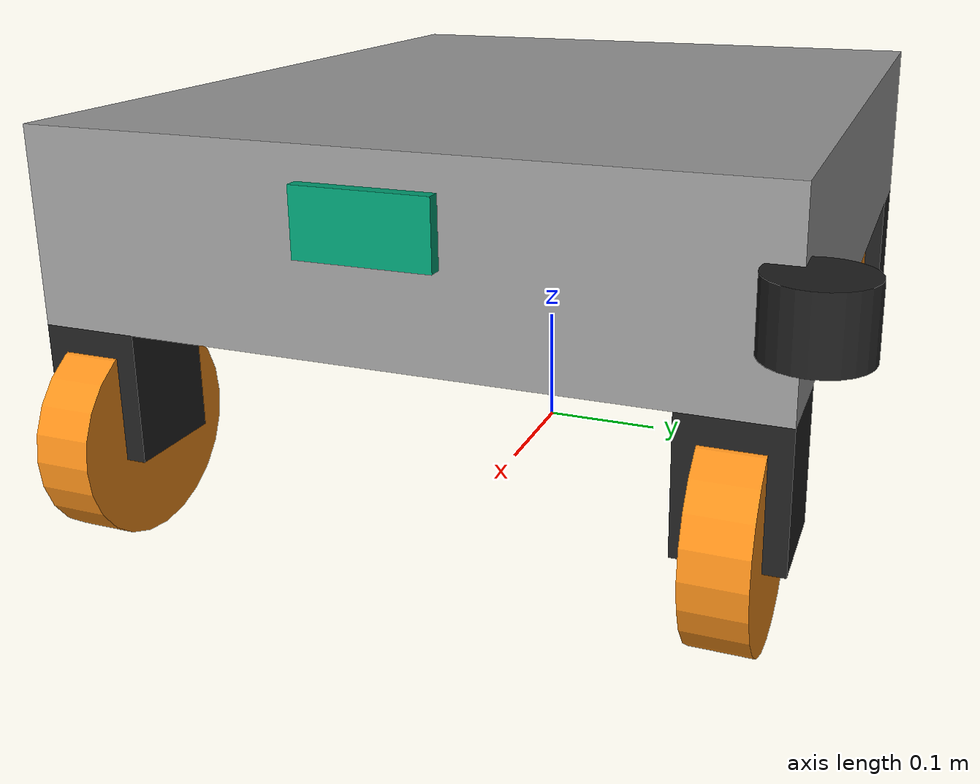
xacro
<?xml version="1.0"?>
<robot name="swerve_robot" xmlns:xacro="http://www.ros.org/wiki/xacro">

    <xacro:include filename="common_properties.xacro" />
    <xacro:include filename="mobile_base.xacro" />
    <xacro:include filename="swerve_robot_ros2_control.xacro" />
    <xacro:include filename="mobile_base_gazebo.xacro" />
    <xacro:include filename="camera.xacro" />
    <xacro:include filename="lidar.xacro" />
    <xacro:include filename="imu.xacro" />

</robot>

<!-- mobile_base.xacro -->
<robot name="swerve_robot" xmlns:xacro="http://www.ros.org/wiki/xacro">

    <xacro:property name="base_length" value="0.679" />
    <xacro:property name="base_width" value="0.550" />
    <xacro:property name="base_height" value="0.15" />
    <xacro:property name="wheel_radius" value="0.08" />
    <xacro:property name="wheel_length" value="0.044" />
    <xacro:property name="caster_length" value="0.075" />
    <xacro:property name="caster_width" value="0.075" />
    <xacro:property name="caster_height" value="0.1" />

    <link name="base_footprint" />

    <link name="base_link">
        <visual>
            <geometry>
                 <box size="${base_length} ${base_width} ${base_height}"/>
            </geometry>
            <origin xyz="0 0 0" rpy="0 0 0" />
            <material name="grey" />
        </visual>
        <collision>
            <geometry>
                <box size="${base_length} ${base_width} ${base_height}"/>
            </geometry>
            <origin xyz="0 0 0" rpy="0 0 0" />
        </collision>
        <xacro:box_inertia m="20.0" x="${base_length}" y="${base_width}" z="${base_height}"
                           o_xyz="0 0 ${base_height}" o_rpy="0 0 0" />
    </link>

    <xacro:macro name="caster_link" params="prefix">
        <link name="${prefix}_caster_link">
            <visual>
                <geometry>
                    <box size="${caster_length} ${caster_width} ${caster_height}"/>
                </geometry>
                <origin xyz="0 0 0" rpy="0 0 0" />
                <material name="black" />
            </visual>
            <collision>
                <geometry>
                    <box size="${caster_length} ${caster_width} ${caster_height}"/>
                </geometry>
                <origin xyz="0 0 0" rpy="0 0 0" />
            </collision>
            <xacro:box_inertia m="10.0" x="${caster_length}" y="${caster_width}" z="${caster_height}"
                            o_xyz="0 0 ${caster_height}" o_rpy="0 0 0" />
        </link>
    </xacro:macro>

    <xacro:caster_link prefix="front_right" />
    <xacro:caster_link prefix="front_left" />
    <xacro:caster_link prefix="back_right" />
    <xacro:caster_link prefix="back_left" />

    <xacro:macro name="wheel_link" params="prefix">
        <link name="${prefix}_wheel_link">
            <visual>
                <geometry>
                    <cylinder radius="${wheel_radius}" length="${wheel_length}" />
                </geometry>
                <origin xyz="0 0 0" rpy="${pi / 2.0} 0 0" />
                <material name="orange" />
            </visual>
            <collision>
                <geometry>
                    <cylinder radius="${wheel_radius}" length="${wheel_length}" />
                </geometry>
                <origin xyz="0 0 0" rpy="${pi / 2.0} 0 0" />
            </collision>
            <xacro:cylinder_inertia m="10.0" r="${wheel_radius}" l="${wheel_length}"
                                    o_xyz="0 0 0" o_rpy="${pi / 2.0} 0 0" />
        </link>
    </xacro:macro>

    <xacro:wheel_link prefix="front_right" />
    <xacro:wheel_link prefix="front_left" />
    <xacro:wheel_link prefix="back_right" />
    <xacro:wheel_link prefix="back_left" />

    <joint name="base_joint" type="fixed">
        <parent link="base_footprint" />
        <child link="base_link" />
        <origin xyz="0 0 ${base_height / 2 + wheel_radius * 2 + (caster_height / 2 - wheel_radius / 2)}" rpy="0 0 0"/>
    </joint>

    <joint name="base_frontleft_caster_joint" type="continuous">
        <parent link="base_link" />
        <child link="front_left_caster_link" />
        <origin xyz="${base_length / 2 - caster_length / 2} ${base_width / 2 - caster_width / 2} ${- base_height / 2 - caster_height / 2}" rpy="0 0 0"/>
        <axis xyz="0 0 1" />
    </joint>

    <joint name="base_frontright_caster_joint" type="continuous">
        <parent link="base_link" />
        <child link="front_right_caster_link" />
        <origin xyz="${base_length / 2 - caster_length / 2} ${-base_width / 2 + caster_width / 2} ${- base_height / 2 - caster_height / 2}" rpy="0 0 0"/>
        <axis xyz="0 0 1" />
    </joint>

    <joint name="base_backleft_caster_joint" type="continuous">
        <parent link="base_link" />
        <child link="back_left_caster_link" />
        <origin xyz="${-base_length / 2 + caster_length / 2} ${base_width / 2 - caster_width / 2} ${- base_height / 2 - caster_height / 2}" rpy="0 0 0"/>
        <axis xyz="0 0 1" />
    </joint>

    <joint name="base_backright_caster_joint" type="continuous">
        <parent link="base_link" />
        <child link="back_right_caster_link" />
        <origin xyz="${-base_length / 2 + caster_length / 2} ${-base_width / 2 + caster_width / 2} ${- base_height / 2 - caster_height / 2}" rpy="0 0 0"/>
        <axis xyz="0 0 1" />
    </joint>

    <joint name="frontleft_caster_wheel_joint" type="continuous">
        <parent link="front_left_caster_link" />
        <child link="front_left_wheel_link" />
        <origin xyz="0 0 ${-wheel_radius / 2}" rpy="0 0 0"/>
        <axis xyz="0 1 0" />
    </joint>

    <joint name="frontright_caster_wheel_joint" type="continuous">
        <parent link="front_right_caster_link" />
        <child link="front_right_wheel_link" />
        <origin xyz="0 0 ${-wheel_radius / 2}" rpy="0 0 0"/>
        <axis xyz="0 1 0" />
    </joint>

    <joint name="backleft_caster_wheel_joint" type="continuous">
        <parent link="back_left_caster_link" />
        <child link="back_left_wheel_link" />
        <origin xyz="0 0 ${-wheel_radius / 2}" rpy="0 0 0"/>
        <axis xyz="0 1 0" />
    </joint>

    <joint name="backright_caster_wheel_joint" type="continuous">
        <parent link="back_right_caster_link" />
        <child link="back_right_wheel_link" />
        <origin xyz="0 0 ${-wheel_radius / 2}" rpy="0 0 0"/>
        <axis xyz="0 1 0" />
    </joint>

</robot>

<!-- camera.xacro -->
<robot xmlns:xacro="http://www.ros.org/wiki/xacro">

    <xacro:property name="camera_length" value="0.01" />
    <xacro:property name="camera_width" value="0.1" />
    <xacro:property name="camera_height" value="0.05" />

    <link name="camera_link">
        <visual>
            <geometry>
                <box size="${camera_length} ${camera_width} ${camera_height}" />
            </geometry>
            <material name="dark" />
        </visual>
        <collision>
            <geometry>
                <box size="${camera_length} ${camera_width} ${camera_height}" />
            </geometry>
        </collision>
        <xacro:box_inertia m="0.1" x="${camera_length}" y="${camera_width}" z="${camera_height}"
                           o_xyz="0 0 0" o_rpy="0 0 0" />
    </link>

    <joint name="base_camera_joint" type="fixed">
        <parent link="base_link" />
        <child link="camera_link" />
        <origin xyz="${((base_length / 2) + (camera_length / 2) + 0.01)} 0 ${base_height / 4.0 - 0.01}" rpy="0 0 0" />
    </joint>

    <link name="camera_link_optical" />

    <joint name="camera_optical_joint" type="fixed">
        <origin xyz="0 0 0" rpy="${-pi/2} 0 ${-pi/2}"/>
        <parent link="camera_link"/>
        <child link="camera_link_optical"/>
    </joint>

    <gazebo reference="camera_link">
        <sensor name="camera" type="camera">
            <camera>
                <horizontal_fov>1.3962634</horizontal_fov>
                <image>
                    <width>640</width>
                    <height>480</height>
                    <format>R8G8B8</format>
                </image>
                <clip>
                    <near>0.1</near>
                    <far>15</far>
                </clip>
                <noise>
                    <type>gaussian</type>
                    <mean>0.0</mean>
                    <stddev>0.007</stddev>
                </noise>
                <optical_frame_id>camera_link_optical</optical_frame_id>
                <camera_info_topic>camera/camera_info</camera_info_topic>
            </camera>
            <always_on>1</always_on>
            <update_rate>20</update_rate>
            <visualize>true</visualize>
            <topic>camera/image_raw</topic>
        </sensor>
    </gazebo>

    <gazebo reference="camera_link">
      <sensor name="depth_camera" type="rgbd_camera">
        <camera>
          <horizontal_fov>1.3962634</horizontal_fov>
          <image>
            <width>640</width>
            <height>480</height>
          </image>
          <clip>
            <near>0.05</near>
            <far>3.0</far>
          </clip>
        </camera>
        <always_on>1</always_on>
        <gz_frame_id>camera_link_optical</gz_frame_id>
        <topic>depth_camera</topic>
        <update_rate>5</update_rate>
        <visualize>true</visualize>
      </sensor>
    </gazebo>

</robot>

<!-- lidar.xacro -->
<robot xmlns:xacro="http://www.ros.org/wiki/xacro">

    <xacro:property name="lidar_radius" value="0.035" />
    <xacro:property name="lidar_length" value="0.05" />

    <link name="topleft_lidar_link">
        <visual>
            <geometry>
                <cylinder radius="${lidar_radius}" length="${lidar_length}" />
            </geometry>
            <origin xyz="0 0 0" rpy="0 0 0" />
            <material name="black" />
        </visual>
        <collision>
            <geometry>
                <cylinder radius="${lidar_radius}" length="${lidar_length}" />
            </geometry>
        </collision>
        <xacro:cylinder_inertia m="1.0" r="${lidar_radius}" l="${lidar_length}"
                                o_xyz="0 0 0" o_rpy="0 0 0" />
    </link>

    <link name="backright_lidar_link">
        <visual>
            <geometry>
                <cylinder radius="${lidar_radius}" length="${lidar_length}" />
            </geometry>
            <origin xyz="0 0 0" rpy="0 0 0" />
            <material name="black" />
        </visual>
        <collision>
            <geometry>
                <cylinder radius="${lidar_radius}" length="${lidar_length}" />
            </geometry>
        </collision>
        <xacro:cylinder_inertia m="1.0" r="${lidar_radius}" l="${lidar_length}"
                                o_xyz="0 0 0" o_rpy="0 0 0" />
    </link>

    <joint name="base_topleft_lidar_joint" type="fixed">
        <parent link="base_link" />
        <child link="topleft_lidar_link" />
        <origin xyz="${base_length / 2.0 + 0.01} ${base_width / 2.0 + 0.01} 0" rpy="0 0 0.785398163" />
    </joint>

    <joint name="base_backright_lidar_joint" type="fixed">
        <parent link="base_link" />
        <child link="backright_lidar_link" />
        <origin xyz="${-base_length / 2.0 - 0.01} ${-base_width / 2.0 - 0.01} 0" rpy="0 0 -2.35619449" />
    </joint>

  <gazebo reference="topleft_lidar_link">
    <sensor name="topleft_lidar" type="gpu_lidar">
      <always_on>true</always_on>
      <visualize>true</visualize>
      <topic>/topleft/scan</topic>
      <update_rate>10</update_rate>
      <gz_frame_id>topleft_lidar_link</gz_frame_id>
      <lidar>
        <scan>
          <horizontal>
            <samples>1168</samples>
            <resolution>1.00000</resolution>
            <min_angle>-2.30</min_angle>
            <max_angle>2.30</max_angle>
          </horizontal>
        </scan>
        <range>
          <min>0.050000</min>
          <max>30.0</max>
          <resolution>0.02</resolution>
        </range>
        <noise>
          <type>gaussian</type>
          <mean>0.0</mean>
          <stddev>0.01</stddev>
        </noise>
      </lidar>
    </sensor>
  </gazebo>

  <gazebo reference="backright_lidar_link">
    <sensor name="backright_lidar" type="gpu_lidar">
      <always_on>true</always_on>
      <visualize>true</visualize>
      <topic>/backright/scan</topic>
      <update_rate>10</update_rate>
      <gz_frame_id>backright_lidar_link</gz_frame_id>
      <lidar>
        <scan>
          <horizontal>
            <samples>1168</samples>
            <resolution>1.00000</resolution>
            <min_angle>-2.30</min_angle>
            <max_angle>2.30</max_angle>
          </horizontal>
        </scan>
        <range>
          <min>0.050000</min>
          <max>30.0</max>
          <resolution>0.02</resolution>
        </range>
        <noise>
          <type>gaussian</type>
          <mean>0.0</mean>
          <stddev>0.01</stddev>
        </noise>
      </lidar>
    </sensor>
  </gazebo>

</robot>

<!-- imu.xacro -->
<robot xmlns:xacro="http://www.ros.org/wiki/xacro">

    <link name="imu_link"/>

    <joint name="base_imu_joint" type="fixed">
        <parent link="base_link"/>
        <child link="imu_link"/>
        <origin xyz="0 0 ${base_height / 2}" rpy="0 0 0"/>
    </joint>

    <gazebo reference="imu_link">
        <sensor name="imu" type="imu">
          <always_on>true</always_on>
          <update_rate>100</update_rate>
          <topic>/imu/data</topic>
          <gz_frame_id>imu_link</gz_frame_id>
          <imu>
            <angular_velocity>
              <x>
                <noise type="gaussian">
                  <mean>0.0</mean>
                  <stddev>2e-4</stddev>
                </noise>
              </x>
              <y>
                <noise type="gaussian">
                  <mean>0.0</mean>
                  <stddev>2e-4</stddev>
                </noise>
              </y>
              <z>
                <noise type="gaussian">
                  <mean>0.0</mean>
                  <stddev>2e-4</stddev>
                </noise>
              </z>
            </angular_velocity>
            <linear_acceleration>
              <x>
                <noise type="gaussian">
                  <mean>0.0</mean>
                  <stddev>1.7e-2</stddev>
                </noise>
              </x>
              <y>
                <noise type="gaussian">
                  <mean>0.0</mean>
                  <stddev>1.7e-2</stddev>
                </noise>
              </y>
              <z>
                <noise type="gaussian">
                  <mean>0.0</mean>
                  <stddev>1.7e-2</stddev>
                </noise>
              </z>
            </linear_acceleration>
          </imu>
        </sensor>
    </gazebo>

</robot>
